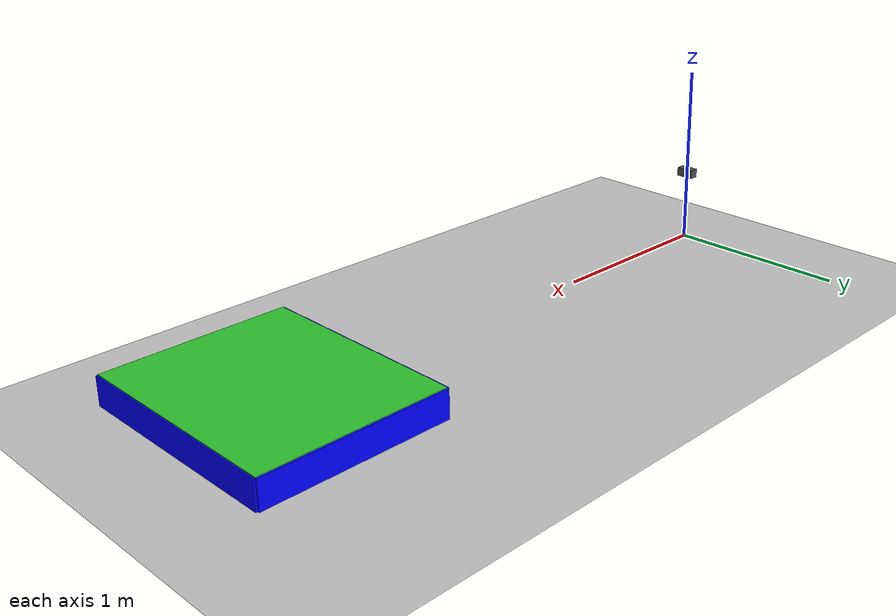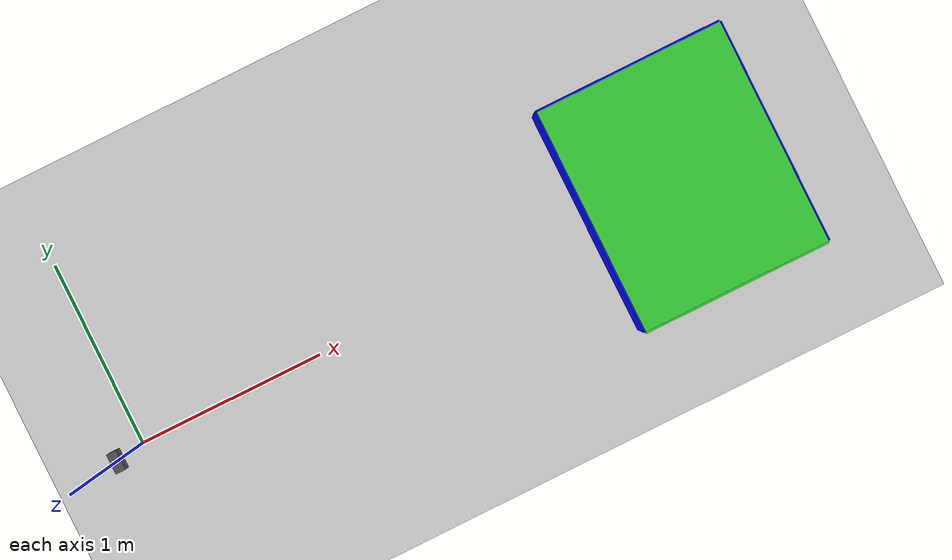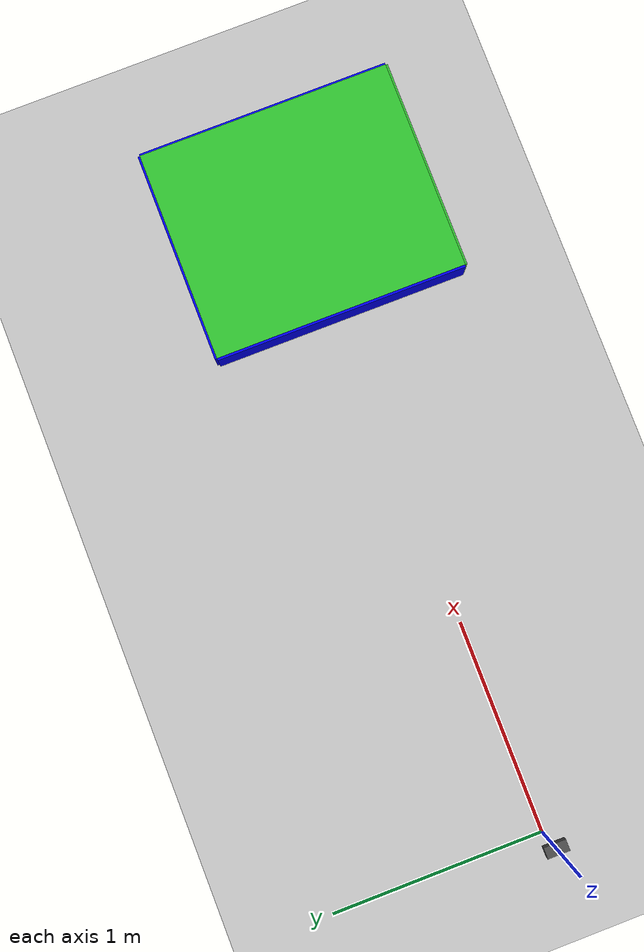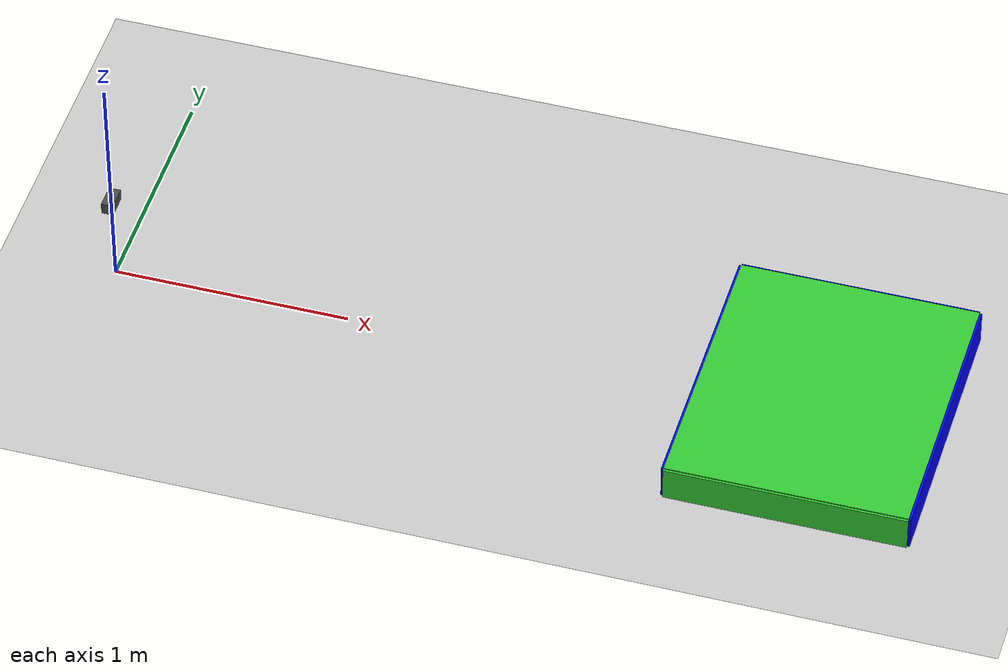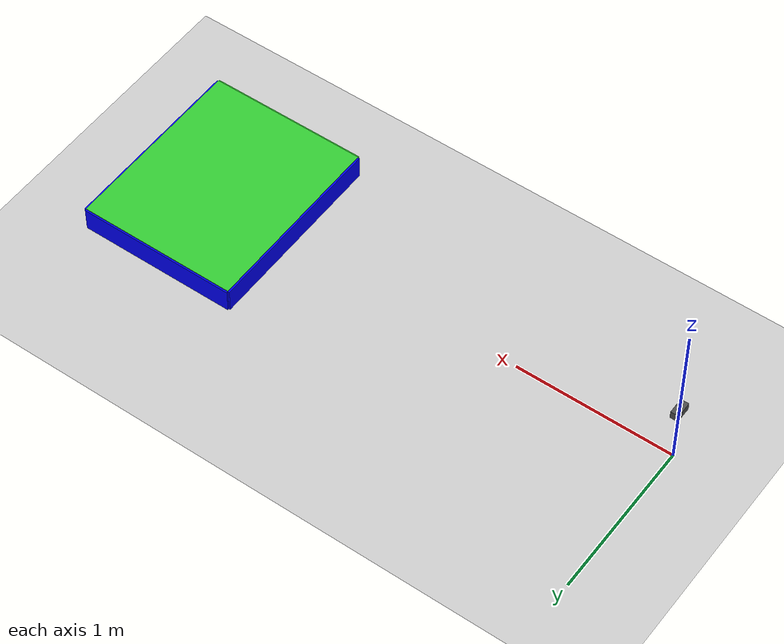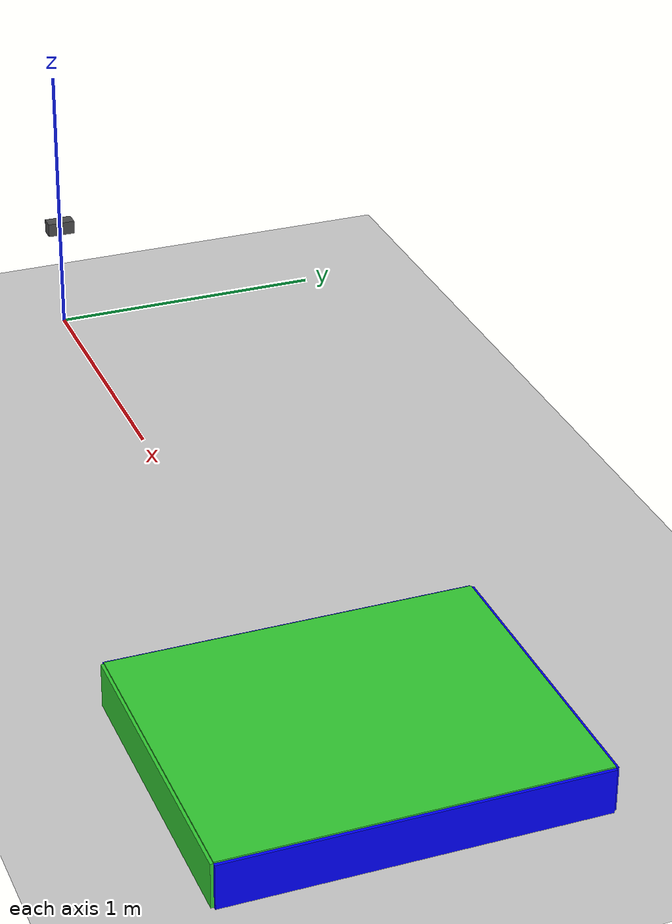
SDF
<?xml version="1.0"?>
<sdf version="1.6">
  <world name="pallet_test_world">
    <!-- Lighting -->
    <include>
      <uri>model://sun</uri>
    </include>

    <!-- Ground plane -->
    <include>
      <uri>model://ground_plane</uri>
    </include>

    <!-- Pallet at origin, front face (1200mm width) facing camera (-X direction) -->
    <!-- Pallet pose: x, y, z, roll, pitch, yaw -->
    <!-- yaw=1.5708 (90 deg) to rotate pallet so 1200mm side faces camera -->
    <include>
      <uri>model://pallet</uri>
      <name>pallet_0deg</name>
      <pose>3.0 0 0 0 0 1.5708</pose>
    </include>

    <!-- Gazebo ROS state plugin for teleop control -->
    <plugin name="gazebo_ros_state" filename="libgazebo_ros_state.so">
      <ros>
        <namespace>/gazebo</namespace>
      </ros>
      <update_rate>100.0</update_rate>
    </plugin>

    <!-- Camera (fixed position looking at pallet) -->
    <!-- RealSense camera height: 40cm from ground -->
    <model name="camera_model">
      <static>true</static>
      <pose>0 0 0.4 0 0 0</pose>
      <link name="camera_link">
        <visual name="camera_visual">
          <geometry>
            <box>
              <size>0.05 0.1 0.05</size>
            </box>
          </geometry>
          <material>
            <ambient>0.1 0.1 0.1 1</ambient>
            <diffuse>0.3 0.3 0.3 1</diffuse>
          </material>
        </visual>
        <sensor name="camera" type="camera">
          <camera>
            <horizontal_fov>1.047</horizontal_fov>
            <image>
              <width>1280</width>
              <height>720</height>
              <format>R8G8B8</format>
            </image>
            <clip>
              <near>0.1</near>
              <far>100</far>
            </clip>
          </camera>
          <always_on>1</always_on>
          <update_rate>30</update_rate>
          <visualize>true</visualize>
          <plugin name="camera_controller" filename="libgazebo_ros_camera.so">
            <ros>
              <namespace>/</namespace>
              <remapping>image_raw:=camera/image_raw</remapping>
              <remapping>camera_info:=camera/camera_info</remapping>
            </ros>
            <camera_name>camera</camera_name>
            <frame_name>camera_link</frame_name>
          </plugin>
        </sensor>
      </link>
    </model>

  </world>
</sdf>

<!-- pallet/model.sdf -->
<sdf version="1.6">
  <model name="pallet">
    <static>true</static>
    <link name="pallet_link">

      <!-- Top surface: 1200x1000mm (green) -->
      <visual name="top_surface">
        <pose>0 0 0.15 0 0 0</pose>
        <geometry>
          <box>
            <size>1.2 1.0 0.01</size>
          </box>
        </geometry>
        <material>
          <ambient>0.2 0.8 0.2 1</ambient>
          <diffuse>0.2 0.8 0.2 1</diffuse>
        </material>
      </visual>

      <!-- Front face (camera facing): 1200x150mm (blue) -->
      <!-- Located at Y = -0.5 (front side facing camera) -->
      <visual name="front_face">
        <pose>0 -0.505 0.075 0 0 0</pose>
        <geometry>
          <box>
            <size>1.2 0.01 0.15</size>
          </box>
        </geometry>
        <material>
          <ambient>0.0 0.0 1.0 1</ambient>
          <diffuse>0.0 0.0 1.0 1</diffuse>
        </material>
      </visual>

      <!-- Back face: 1200x150mm (BLUE - camera facing) -->
      <visual name="back_face">
        <pose>0 0.505 0.075 0 0 0</pose>
        <geometry>
          <box>
            <size>1.2 0.01 0.15</size>
          </box>
        </geometry>
        <material>
          <ambient>0.0 0.0 1.0 1</ambient>
          <diffuse>0.0 0.0 1.0 1</diffuse>
        </material>
      </visual>

      <!-- Left side face: 1000x150mm (green) -->
      <visual name="left_face">
        <pose>-0.605 0 0.075 0 0 0</pose>
        <geometry>
          <box>
            <size>0.01 1.0 0.15</size>
          </box>
        </geometry>
        <material>
          <ambient>0.2 0.8 0.2 1</ambient>
          <diffuse>0.2 0.8 0.2 1</diffuse>
        </material>
      </visual>

      <!-- Right side face: 1000x150mm (BLUE - camera facing) -->
      <visual name="right_face">
        <pose>0.605 0 0.075 0 0 0</pose>
        <geometry>
          <box>
            <size>0.01 1.0 0.15</size>
          </box>
        </geometry>
        <material>
          <ambient>0.0 0.0 1.0 1</ambient>
          <diffuse>0.0 0.0 1.0 1</diffuse>
        </material>
      </visual>

      <!-- Collision (full box) -->
      <collision name="pallet_collision">
        <pose>0 0 0.075 0 0 0</pose>
        <geometry>
          <box>
            <size>1.2 1.0 0.15</size>
          </box>
        </geometry>
      </collision>

    </link>
  </model>
</sdf>
